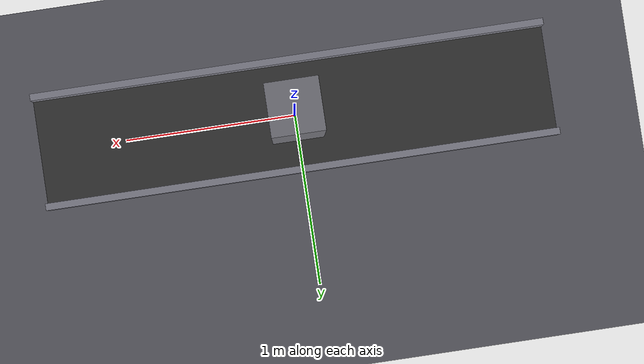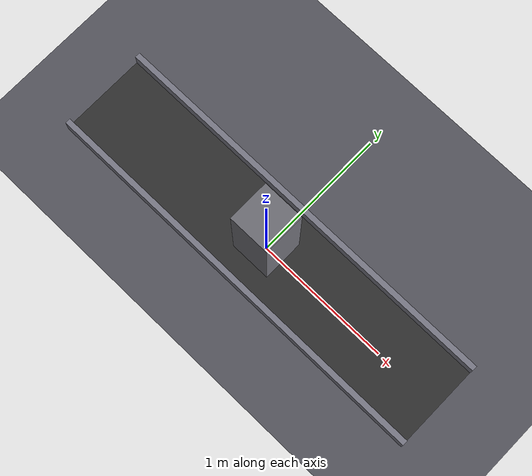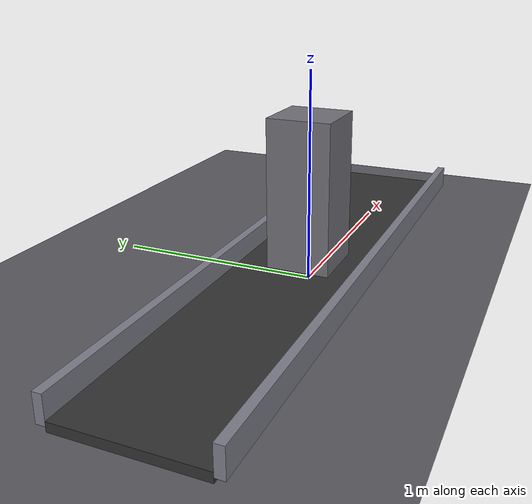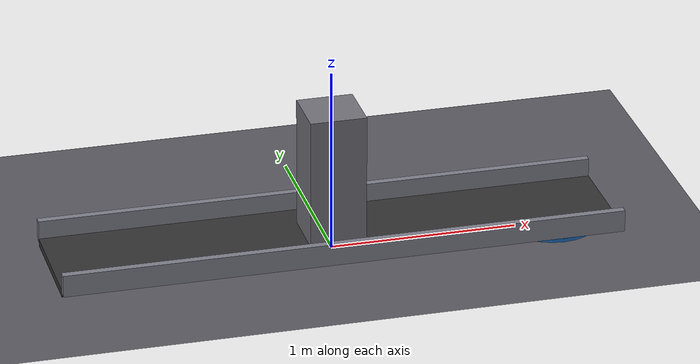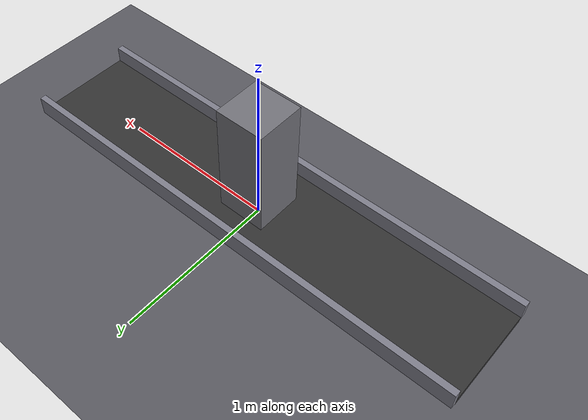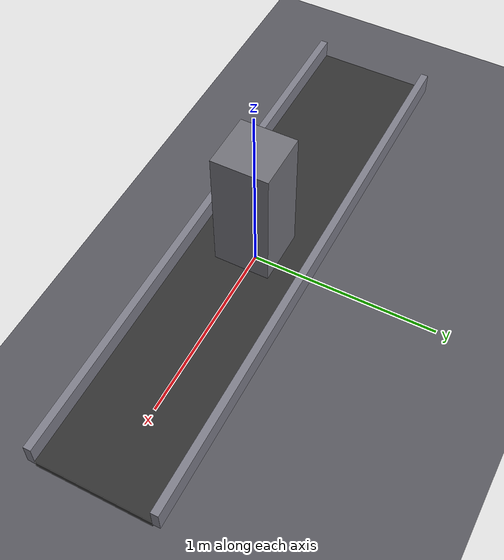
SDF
<?xml version="1.0" ?>
<sdf version="1.9">
  <world name="conveyor_cell">
    <physics name="default_physics" type="ignition.physics" default="true">
      <max_step_size>0.001</max_step_size>
      <real_time_factor>1.0</real_time_factor>
    </physics>

    <plugin filename="gz-sim-physics-system" name="gz::sim::systems::Physics"/>
    <plugin filename="gz-sim-user-commands-system" name="gz::sim::systems::UserCommands"/>
    <plugin filename="gz-sim-scene-broadcaster-system" name="gz::sim::systems::SceneBroadcaster"/>
    <plugin filename="gz-sim-sensors-system" name="gz::sim::systems::Sensors">
      <render_engine>ogre2</render_engine>
    </plugin>

    <light type="directional" name="sun">
      <cast_shadows>true</cast_shadows>
      <pose>0 0 10 0 0.6 0</pose>
      <diffuse>0.9 0.9 0.9 1</diffuse>
      <specular>0.3 0.3 0.3 1</specular>
      <direction>-0.5 0.1 -1</direction>
    </light>

    <model name="ground_plane">
      <static>true</static>
      <link name="link">
        <collision name="collision">
          <geometry><plane><normal>0 0 1</normal><size>20 20</size></plane></geometry>
        </collision>
        <visual name="visual">
          <geometry><plane><normal>0 0 1</normal><size>20 20</size></plane></geometry>
          <material>
            <ambient>0.35 0.35 0.38 1</ambient>
            <diffuse>0.35 0.35 0.38 1</diffuse>
          </material>
        </visual>
      </link>
    </model>

    <model name="conveyor_frame">
      <static>true</static>
      <pose>0 0 0.05 0 0 0</pose>
      <link name="link">
        <visual name="belt">
          <pose>0 0 0.02 0 0 0</pose>
          <geometry><box><size>3.0 0.6 0.04</size></box></geometry>
          <material>
            <ambient>0.15 0.15 0.15 1</ambient>
            <diffuse>0.2 0.2 0.2 1</diffuse>
          </material>
        </visual>
        <visual name="rail_left">
          <pose>0 0.32 0.08 0 0 0</pose>
          <geometry><box><size>3.0 0.04 0.12</size></box></geometry>
          <material><ambient>0.5 0.5 0.55 1</ambient><diffuse>0.5 0.5 0.55 1</diffuse></material>
        </visual>
        <visual name="rail_right">
          <pose>0 -0.32 0.08 0 0 0</pose>
          <geometry><box><size>3.0 0.04 0.12</size></box></geometry>
          <material><ambient>0.5 0.5 0.55 1</ambient><diffuse>0.5 0.5 0.55 1</diffuse></material>
        </visual>
      </link>
    </model>

    <model name="workstation_marker">
      <static>true</static>
      <pose>1.2 0 0.01 0 0 0</pose>
      <link name="link">
        <visual name="pad">
          <geometry><cylinder><radius>0.25</radius><length>0.02</length></cylinder></geometry>
          <material><ambient>0.1 0.4 0.7 1</ambient><diffuse>0.1 0.4 0.7 1</diffuse></material>
        </visual>
      </link>
    </model>

    <include>
      <uri>model://industrial_cell</uri>
      <pose>0 0 0 0 0 0</pose>
    </include>
  </world>
</sdf>

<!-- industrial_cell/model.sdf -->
<sdf version="1.9">
  <model name="industrial_cell">
    <pose>0 0 0.05 0 0 0</pose>
    <self_collide>false</self_collide>

    <link name="base_link">
      <inertial>
        <mass>40</mass>
        <inertia><ixx>2.5</ixx><iyy>2.5</iyy><izz>1.5</izz></inertia>
      </inertial>
      <visual name="visual">
        <geometry><box><size>0.3 0.3 0.8</size></box></geometry>
        <pose>0 0 0.4 0 0 0</pose>
        <material><ambient>0.45 0.45 0.48 1</ambient><diffuse>0.45 0.45 0.48 1</diffuse></material>
      </visual>
      <collision name="collision">
        <geometry><box><size>0.3 0.3 0.8</size></box></geometry>
        <pose>0 0 0.4 0 0 0</pose>
      </collision>
    </link>

    <link name="tcp_link">
      <inertial>
        <mass>2</mass>
        <inertia><ixx>0.02</ixx><iyy>0.02</iyy><izz>0.02</izz></inertia>
      </inertial>
      <visual name="visual">
        <geometry><box><size>0.12 0.12 0.1</size></box></geometry>
        <pose>0 0 0.05 0 0 0</pose>
        <material><ambient>0.9 0.45 0.1 1</ambient><diffuse>0.9 0.45 0.1 1</diffuse></material>
      </visual>
      <collision name="collision">
        <geometry><box><size>0.12 0.12 0.1</size></box></geometry>
        <pose>0 0 0.05 0 0 0</pose>
      </collision>
    </link>

    <link name="conveyor_link">
      <inertial>
        <mass>5</mass>
        <inertia><ixx>0.1</ixx><iyy>0.1</iyy><izz>0.1</izz></inertia>
      </inertial>
      <visual name="visual">
        <geometry><box><size>0.5 0.4 0.06</size></box></geometry>
        <pose>0 0 0.03 0 0 0</pose>
        <material><ambient>0.12 0.12 0.12 1</ambient><diffuse>0.12 0.12 0.12 1</diffuse></material>
      </visual>
    </link>

    <link name="gripper_finger">
      <inertial>
        <mass>0.5</mass>
        <inertia><ixx>0.001</ixx><iyy>0.001</iyy><izz>0.001</izz></inertia>
      </inertial>
      <visual name="visual">
        <geometry><box><size>0.06 0.08 0.12</size></box></geometry>
        <pose>0 0.04 0.04 0 0 0</pose>
        <material><ambient>0.6 0.62 0.65 1</ambient><diffuse>0.6 0.62 0.65 1</diffuse></material>
      </visual>
    </link>

    <joint name="arm_slide_joint" type="prismatic">
      <parent>base_link</parent>
      <child>tcp_link</child>
      <pose>0 0 0.85 0 0 0</pose>
      <axis>
        <xyz>1 0 0</xyz>
        <limit><lower>0</lower><upper>1</upper></limit>
        <dynamics><damping>0.5</damping></dynamics>
      </axis>
    </joint>

    <joint name="conveyor_joint" type="revolute">
      <parent>base_link</parent>
      <child>conveyor_link</child>
      <pose>0.6 0 0.15 0 0 0</pose>
      <axis>
        <xyz>0 1 0</xyz>
        <limit><lower>-6.28</lower><upper>6.28</upper></limit>
        <dynamics><damping>1.0</damping></dynamics>
      </axis>
    </joint>

    <joint name="gripper_joint" type="prismatic">
      <parent>tcp_link</parent>
      <child>gripper_finger</child>
      <pose>0 0 0.1 0 0 0</pose>
      <axis>
        <xyz>0 1 0</xyz>
        <limit><lower>0</lower><upper>0.08</upper></limit>
        <dynamics><damping>0.2</damping></dynamics>
      </axis>
    </joint>

    <plugin filename="gz-sim-joint-state-publisher-system" name="gz::sim::systems::JointStatePublisher">
      <joint_name>arm_slide_joint</joint_name>
      <joint_name>conveyor_joint</joint_name>
      <joint_name>gripper_joint</joint_name>
    </plugin>

    <plugin filename="gz-sim-joint-controller-system" name="gz::sim::systems::JointController">
      <joint_name>arm_slide_joint</joint_name>
      <topic>/model/industrial_cell/joint/arm_slide_joint/cmd_vel</topic>
      <initial_velocity>0</initial_velocity>
    </plugin>

    <plugin filename="gz-sim-joint-controller-system" name="gz::sim::systems::JointController">
      <joint_name>conveyor_joint</joint_name>
      <topic>/model/industrial_cell/joint/conveyor_joint/cmd_vel</topic>
      <initial_velocity>0</initial_velocity>
    </plugin>

    <plugin filename="gz-sim-joint-controller-system" name="gz::sim::systems::JointController">
      <joint_name>gripper_joint</joint_name>
      <topic>/model/industrial_cell/joint/gripper_joint/cmd_vel</topic>
      <initial_velocity>0</initial_velocity>
    </plugin>
  </model>
</sdf>
